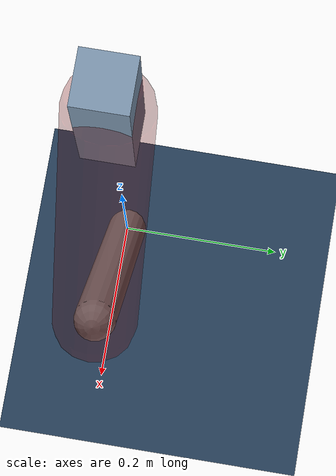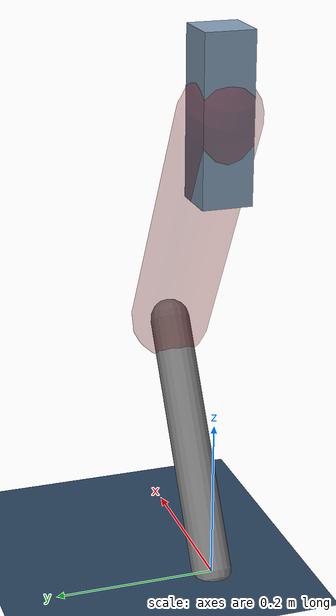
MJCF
<mujoco model="Hopper2D">
	<compiler inertiafromgeom="true" angle="radian" />
	<option timestep="0.001" integrator="implicit" cone="elliptic" solver="Newton" tolerance="1e-10" />

	<default>
		<geom contype="1" conaffinity="1" condim="3" friction="2 0.005 0.0001" solref="0.005 1" />
		<joint limited="true" damping="0.1" />
	</default>

	<asset>
		<texture name="skybox" type="skybox" builtin="gradient" rgb1=".4 .6 .8" rgb2="0 0 0" width="800" height="800" />
		<texture name="grid" type="2d" builtin="checker" rgb1=".1 .2 .3" rgb2=".2 .3 .4" width="300" height="300" mark="edge" markrgb=".2 .3 .4" />
		<material name="ground" texture="grid" texrepeat="1 1" texuniform="true" reflectance="0.1" />
		<material name="leg" rgba="0.5 0.6 0.7 1" />
	</asset>

	<worldbody>

		<geom name="floor" type="plane" size="5 5 0.25" material="ground" />

		<light directional="false" diffuse="0.8 0.8 0.8" specular="0.3 0.3 0.3" pos="0 0 2" dir="0 0 -1" />
		<light mode="targetbodycom" target="base" directional="false" diffuse="0.8 0.8 0.8" specular="0.3 0.3 0.3" pos="0 0 2" dir="0 0 -1" />

		<camera name="fixed" pos="0 -2 1" xyaxes="1 0 0 0 0 1" />
		<camera name="tracking" mode="trackcom" pos="0 -3 1" />

		<body name="root" pos="0 0 0.5843987466301914">
			<joint name="slide_x" type="slide" axis="1 0 0" range="-100 100" />
			<joint name="slide_z" type="slide" axis="0 0 1" range="0 10" />

			<body name="base" pos="0 0 0">
				<geom name="torso" type="box" size="0.03 0.03 0.1" mass="2.7199999999999998" material="leg" />

				<body name="link1" pos="0 0 0" euler="0 1.0680430087540451 0">
					<joint type="hinge" axis="0 -1 0" pos="0 0 0" name="hinge1" limited="true" range="-3.14 3.14" stiffness="0" damping="0.1" />
					<geom name="thigh" type="capsule" fromto="0 0 0 0.349968950639892 0 0" size="0.05" rgba="0.5 0 0 0.3" mass="1.1266130617916976" />

					<body name="link2" pos="0.349968950639892 0 0" euler="0 1.0484190931614723 0">
						<joint type="hinge" axis="0 -1 0" pos="0 0 0" name="hinge2" limited="true" range="-3.14 3.14" stiffness="0" damping="0.1" />
						<geom name="shank" type="capsule" fromto="0 0 0 0.3249193835761149 0 0" size="0.025" mass="0.503635506860892" />

					</body>
				</body>
			</body>
		</body>
	</worldbody>

	<actuator>
		<motor name="torque1" joint="hinge1" ctrlrange="-163.0442847497537 163.0442847497537" ctrllimited="true" gear="1" />
		<motor name="torque2" joint="hinge2" ctrlrange="-13.210440545227852 13.210440545227852" ctrllimited="true" gear="1" />
	</actuator>
</mujoco>
